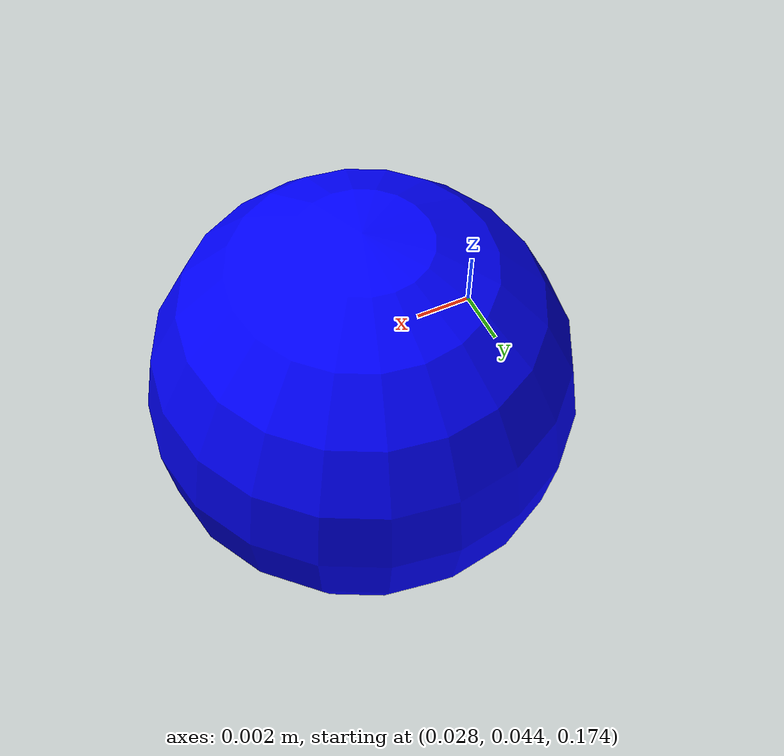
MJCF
<mujoco model="aloha_box_tranfer">
    <worldbody>
        <body name="ball" pos="0.02 0.02 0.09">
            <joint name="ball_joint" type="free" frictionloss="0.01" />
            <inertial pos="0.02 0.02 0.09" mass="0.005" diaginertia="0.002 0.002 0.002" />
            <geom condim="4" solimp="2 1 0.01" solref="0.01 1" friction="0.002 0.0001 0.0001" pos="0.015 0.03 0.09" size="0.006" type="sphere" name="blue_ball" rgba="0 0 1 1" />
        </body>

    </worldbody>
</mujoco>
